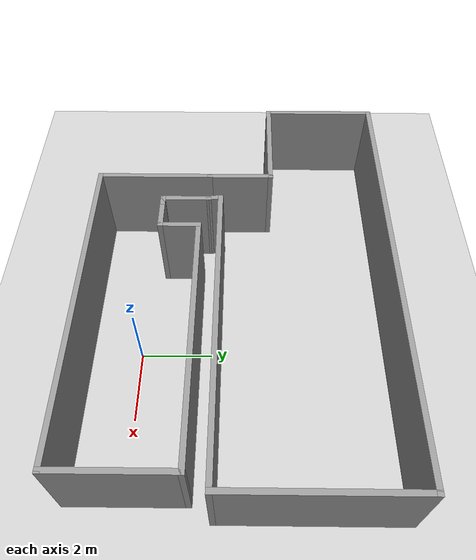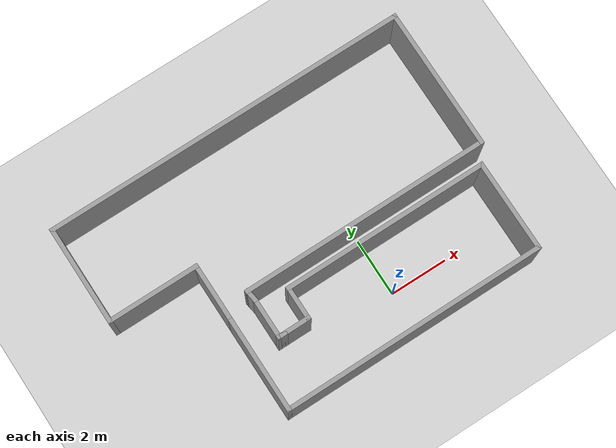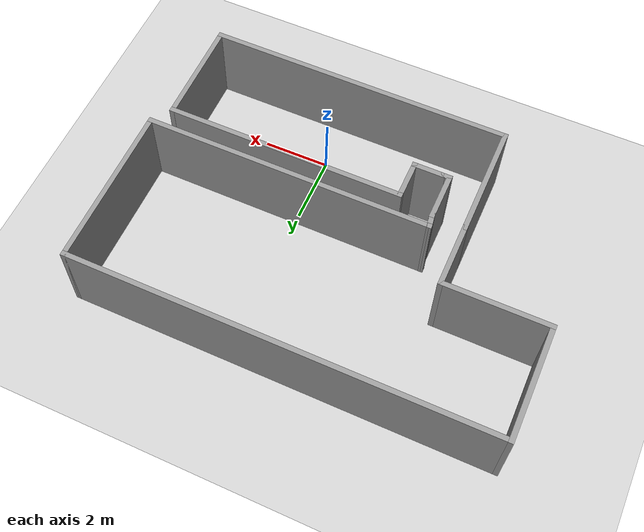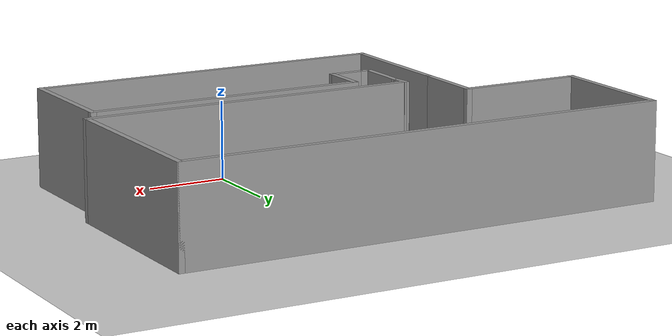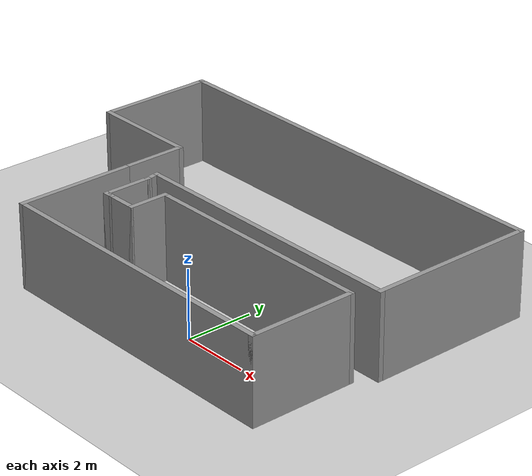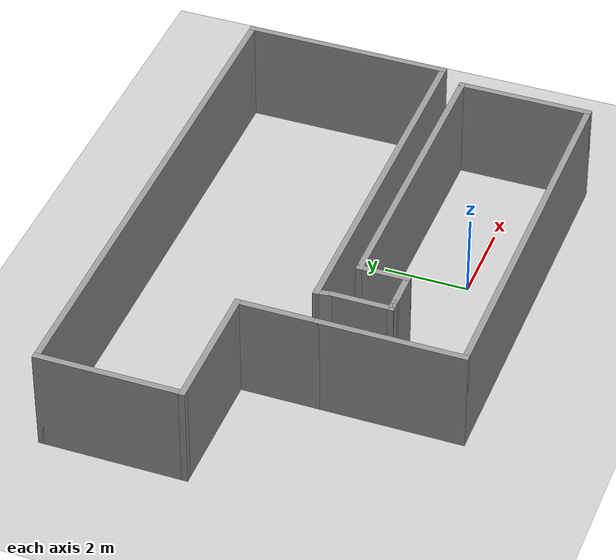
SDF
<sdf version="1.7">
 <world name="default">
  <light name="sun" type="directional">
   <pose>0 0 10 0 -0 0</pose>
   <diffuse>0.8 0.8 0.8 1</diffuse>
   <specular>0.2 0.2 0.2 1</specular>
   <attenuation>
    <range>1000</range>
    <constant>0.9</constant>
    <linear>0.01</linear>
    <quadratic>0.001</quadratic>
   </attenuation>
   <direction>-0.5 0.1 -0.9</direction>
   <spot><inner_angle>0</inner_angle><outer_angle>0</outer_angle><falloff>0</falloff></spot>
  </light>
  <model name="ground_plane">
   <static>1</static>
   <link name="link">
    <collision name="collision">
     <geometry><plane><normal>0 0 1</normal><size>100 100</size></plane></geometry>
     <surface>
      <contact><collide_bitmask>65535</collide_bitmask></contact>
      <friction><ode><mu>100</mu><mu2>50</mu2></ode></friction>
     </surface>
    </collision>
    <visual name="visual">
     <cast_shadows>0</cast_shadows>
     <geometry><plane><normal>0 0 1</normal><size>100 100</size></plane></geometry>
     <material>
      <script><uri>file://media/materials/scripts/gazebo.material</uri><name>Gazebo/Grey</name></script>
     </material>
    </visual>
   </link>
  </model>
  <gravity>0 0 -9.8</gravity>
  <magnetic_field>6e-06 2.3e-05 -4.2e-05</magnetic_field>
  <atmosphere type="adiabatic"/>
  <physics type="ode">
   <max_step_size>0.001</max_step_size>
   <real_time_factor>1</real_time_factor>
   <real_time_update_rate>1000</real_time_update_rate>
  </physics>
  <scene><ambient>0.4 0.4 0.4 1</ambient><background>0.7 0.7 0.7 1</background><shadows>1</shadows></scene>
  <spherical_coordinates>
   <surface_model>EARTH_WGS84</surface_model>
   <latitude_deg>0</latitude_deg>
   <longitude_deg>0</longitude_deg>
   <elevation>0</elevation>
   <heading_deg>0</heading_deg>
  </spherical_coordinates>
  <model name="thin_wall_3">
   <pose>-1.69667 2.78072 0 0 -0 0</pose>
   <link name="Wall_0">
    <collision name="Wall_0_Collision">
     <geometry><box><size>3.5 0.15 2.5</size></box></geometry>
     <pose>0 0 1.25 0 -0 0</pose>
    </collision>
    <visual name="Wall_0_Visual">
     <pose>0 0 1.25 0 -0 0</pose>
     <geometry><box><size>3.5 0.15 2.5</size></box></geometry>
     <material>
      <script><uri>file://media/materials/scripts/gazebo.material</uri><name>Gazebo/Grey</name></script>
      <ambient>1 1 1 1</ambient>
     </material>
     <meta><layer>0</layer></meta>
    </visual>
    <pose>-3.2 -2.6 0 0 -0 -1.5708</pose>
   </link>
   <link name="Wall_1">
    <collision name="Wall_1_Collision">
     <geometry><box><size>9.25 0.15 2.5</size></box></geometry>
     <pose>0 0 1.25 0 -0 0</pose>
    </collision>
    <visual name="Wall_1_Visual">
     <pose>0 0 1.25 0 -0 0</pose>
     <geometry><box><size>9.25 0.15 2.5</size></box></geometry>
     <material>
      <script><uri>file://media/materials/scripts/gazebo.material</uri><name>Gazebo/Grey</name></script>
      <ambient>1 1 1 1</ambient>
     </material>
     <meta><layer>0</layer></meta>
    </visual>
    <pose>1.35 -4.275 0 0 -0 0</pose>
   </link>
   <link name="Wall_10">
    <collision name="Wall_10_Collision">
     <geometry><box><size>0.25 0.15 2.5</size></box></geometry>
     <pose>0 0 1.25 0 -0 0</pose>
    </collision>
    <visual name="Wall_10_Visual">
     <pose>0 0 1.25 0 -0 0</pose>
     <geometry><box><size>0.25 0.15 2.5</size></box></geometry>
     <material>
      <script><uri>file://media/materials/scripts/gazebo.material</uri><name>Gazebo/Grey</name></script>
      <ambient>1 1 1 1</ambient>
     </material>
     <meta><layer>0</layer></meta>
    </visual>
    <pose>-2.2 -2.275 0 0 -0 3.14159</pose>
   </link>
   <link name="Wall_11">
    <collision name="Wall_11_Collision">
     <geometry><box><size>1.5 0.15 2.5</size></box></geometry>
     <pose>0 0 1.25 0 -0 0</pose>
    </collision>
    <visual name="Wall_11_Visual">
     <pose>0 0 1.25 0 -0 0</pose>
     <geometry><box><size>1.5 0.15 2.5</size></box></geometry>
     <material>
      <script><uri>file://media/materials/scripts/gazebo.material</uri><name>Gazebo/Grey</name></script>
      <ambient>1 1 1 1</ambient>
     </material>
     <meta><layer>0</layer></meta>
    </visual>
    <pose>-2.25 -1.6 0 0 -0 1.5708</pose>
   </link>
   <link name="Wall_13">
    <collision name="Wall_13_Collision">
     <geometry><box><size>2 0.15 2.5</size></box></geometry>
     <pose>0 0 1.25 0 -0 0</pose>
    </collision>
    <visual name="Wall_13_Visual">
     <pose>0 0 1.25 0 -0 0</pose>
     <geometry><box><size>2 0.15 2.5</size></box></geometry>
     <material>
      <script><uri>file://media/materials/scripts/gazebo.material</uri><name>Gazebo/Grey</name></script>
      <ambient>1 1 1 1</ambient>
     </material>
     <meta><layer>0</layer></meta>
    </visual>
    <pose>-3.2 -0 0 0 -0 1.5708</pose>
   </link>
   <link name="Wall_14">
    <collision name="Wall_14_Collision">
     <geometry><box><size>3.25 0.15 2.5</size></box></geometry>
     <pose>0 0 1.25 0 -0 0</pose>
    </collision>
    <visual name="Wall_14_Visual">
     <pose>0 0 1.25 0 -0 0</pose>
     <geometry><box><size>3.25 0.15 2.5</size></box></geometry>
     <material>
      <script><uri>file://media/materials/scripts/gazebo.material</uri><name>Gazebo/Grey</name></script>
      <ambient>1 1 1 1</ambient>
     </material>
     <meta><layer>0</layer></meta>
    </visual>
    <pose>-4.75 0.925 0 0 -0 3.14159</pose>
   </link>
   <link name="Wall_16">
    <collision name="Wall_16_Collision">
     <geometry><box><size>3.5 0.15 2.5</size></box></geometry>
     <pose>0 0 1.25 0 -0 0</pose>
    </collision>
    <visual name="Wall_16_Visual">
     <pose>0 0 1.25 0 -0 0</pose>
     <geometry><box><size>3.5 0.15 2.5</size></box></geometry>
     <material>
      <script><uri>file://media/materials/scripts/gazebo.material</uri><name>Gazebo/Grey</name></script>
      <ambient>1 1 1 1</ambient>
     </material>
     <meta><layer>0</layer></meta>
    </visual>
    <pose>-6.3 2.6 0 0 -0 1.5708</pose>
   </link>
   <link name="Wall_17">
    <collision name="Wall_17_Collision">
     <geometry><box><size>12.75 0.15 2.5</size></box></geometry>
     <pose>0 0 1.25 0 -0 0</pose>
    </collision>
    <visual name="Wall_17_Visual">
     <pose>0 0 1.25 0 -0 0</pose>
     <geometry><box><size>12.75 0.15 2.5</size></box></geometry>
     <material>
      <script><uri>file://media/materials/scripts/gazebo.material</uri><name>Gazebo/Grey</name></script>
      <ambient>1 1 1 1</ambient>
     </material>
     <meta><layer>0</layer></meta>
    </visual>
    <pose>0 4.275 0 0 -0 0</pose>
   </link>
   <link name="Wall_18">
    <collision name="Wall_18_Collision">
     <geometry><box><size>5 0.15 2.5</size></box></geometry>
     <pose>0 0 1.25 0 -0 0</pose>
    </collision>
    <visual name="Wall_18_Visual">
     <pose>0 0 1.25 0 -0 0</pose>
     <geometry><box><size>5 0.15 2.5</size></box></geometry>
     <material>
      <script><uri>file://media/materials/scripts/gazebo.material</uri><name>Gazebo/Grey</name></script>
      <ambient>1 1 1 1</ambient>
     </material>
     <meta><layer>0</layer></meta>
    </visual>
    <pose>6.3 1.85 0 0 -0 -1.5708</pose>
   </link>
   <link name="Wall_19">
    <collision name="Wall_19_Collision">
     <geometry><box><size>8.75 0.15 2.5</size></box></geometry>
     <pose>0 0 1.25 0 -0 0</pose>
    </collision>
    <visual name="Wall_19_Visual">
     <pose>0 0 1.25 0 -0 0</pose>
     <geometry><box><size>8.75 0.15 2.5</size></box></geometry>
     <material>
      <script><uri>file://media/materials/scripts/gazebo.material</uri><name>Gazebo/Grey</name></script>
      <ambient>1 1 1 1</ambient>
     </material>
     <meta><layer>0</layer></meta>
    </visual>
    <pose>2 -0.575 0 0 -0 3.14159</pose>
   </link>
   <link name="Wall_2">
    <collision name="Wall_2_Collision">
     <geometry><box><size>3.25 0.15 2.5</size></box></geometry>
     <pose>0 0 1.25 0 -0 0</pose>
    </collision>
    <visual name="Wall_2_Visual">
     <pose>0 0 1.25 0 -0 0</pose>
     <geometry><box><size>3.25 0.15 2.5</size></box></geometry>
     <material>
      <script><uri>file://media/materials/scripts/gazebo.material</uri><name>Gazebo/Grey</name></script>
      <ambient>1 1 1 1</ambient>
     </material>
     <meta><layer>0</layer></meta>
    </visual>
    <pose>5.9 -2.725 0 0 -0 1.5708</pose>
   </link>
   <link name="Wall_20">
    <collision name="Wall_20_Collision">
     <geometry><box><size>0.503553 0.15 2.5</size></box></geometry>
     <pose>0 0 1.25 0 -0 0</pose>
    </collision>
    <visual name="Wall_20_Visual">
     <pose>0 0 1.25 0 -0 0</pose>
     <geometry><box><size>0.503553 0.15 2.5</size></box></geometry>
     <material>
      <script><uri>file://media/materials/scripts/gazebo.material</uri><name>Gazebo/Grey</name></script>
      <ambient>1 1 1 1</ambient>
     </material>
     <meta><layer>0</layer></meta>
    </visual>
    <pose>-2.275 -0.75 0 0 -0 -1.4289</pose>
   </link>
   <link name="Wall_3">
    <collision name="Wall_3_Collision">
     <geometry><box><size>7.25 0.15 2.5</size></box></geometry>
     <pose>0 0 1.25 0 -0 0</pose>
    </collision>
    <visual name="Wall_3_Visual">
     <pose>0 0 1.25 0 -0 0</pose>
     <geometry><box><size>7.25 0.15 2.5</size></box></geometry>
     <material>
      <script><uri>file://media/materials/scripts/gazebo.material</uri><name>Gazebo/Grey</name></script>
      <ambient>1 1 1 1</ambient>
     </material>
     <meta><layer>0</layer></meta>
    </visual>
    <pose>2.35 -1.175 0 0 -0 3.14159</pose>
   </link>
   <link name="Wall_4">
    <collision name="Wall_4_Collision">
     <geometry><box><size>1.25 0.15 2.5</size></box></geometry>
     <pose>0 0 1.25 0 -0 0</pose>
    </collision>
    <visual name="Wall_4_Visual">
     <pose>0 0 1.25 0 -0 0</pose>
     <geometry><box><size>1.25 0.15 2.5</size></box></geometry>
     <material>
      <script><uri>file://media/materials/scripts/gazebo.material</uri><name>Gazebo/Grey</name></script>
      <ambient>1 1 1 1</ambient>
     </material>
     <meta><layer>0</layer></meta>
    </visual>
    <pose>-1.2 -1.725 0 0 -0 -1.5708</pose>
   </link>
   <link name="Wall_5">
    <collision name="Wall_5_Collision">
     <geometry><box><size>1 0.15 2.5</size></box></geometry>
     <pose>0 0 1.25 0 -0 0</pose>
    </collision>
    <visual name="Wall_5_Visual">
     <pose>0 0 1.25 0 -0 0</pose>
     <geometry><box><size>1 0.15 2.5</size></box></geometry>
     <material>
      <script><uri>file://media/materials/scripts/gazebo.material</uri><name>Gazebo/Grey</name></script>
      <ambient>1 1 1 1</ambient>
     </material>
     <meta><layer>0</layer></meta>
    </visual>
    <pose>-1.625 -2.275 0 0 -0 3.14159</pose>
   </link>
   <link name="Wall_7">
    <collision name="Wall_7_Collision">
     <geometry><box><size>0.25 0.15 2.5</size></box></geometry>
     <pose>0 0 1.25 0 -0 0</pose>
    </collision>
    <visual name="Wall_7_Visual">
     <pose>0 0 1.25 0 -0 0</pose>
     <geometry><box><size>0.25 0.15 2.5</size></box></geometry>
     <material>
      <script><uri>file://media/materials/scripts/gazebo.material</uri><name>Gazebo/Grey</name></script>
      <ambient>1 1 1 1</ambient>
     </material>
     <meta><layer>0</layer></meta>
    </visual>
    <pose>-2.1 -2.275 0 0 -0 3.14159</pose>
   </link>
   <link name="Wall_9">
    <collision name="Wall_9_Collision">
     <geometry><box><size>0.25 0.15 2.5</size></box></geometry>
     <pose>0 0 1.25 0 -0 0</pose>
    </collision>
    <visual name="Wall_9_Visual">
     <pose>0 0 1.25 0 -0 0</pose>
     <geometry><box><size>0.25 0.15 2.5</size></box></geometry>
     <material>
      <script><uri>file://media/materials/scripts/gazebo.material</uri><name>Gazebo/Grey</name></script>
      <ambient>1 1 1 1</ambient>
     </material>
     <meta><layer>0</layer></meta>
    </visual>
    <pose>-2.1 -2.275 0 0 -0 3.14159</pose>
   </link>
   <static>1</static>
  </model>
 </world>
</sdf>
